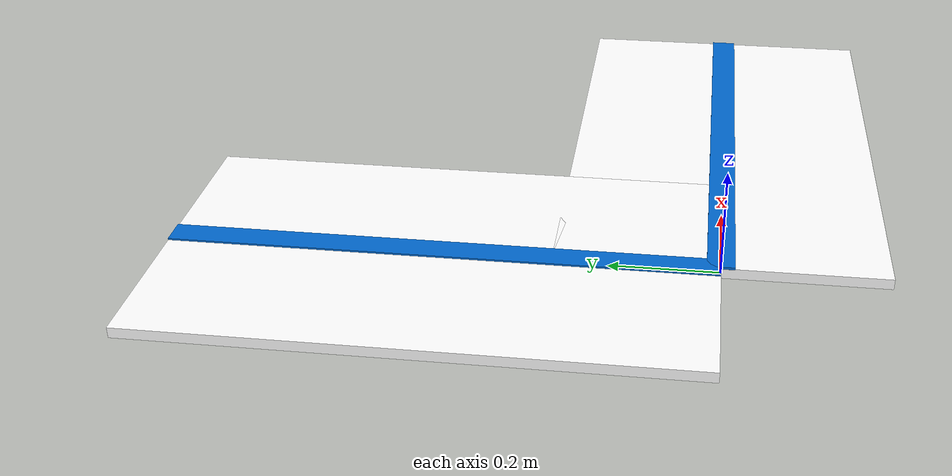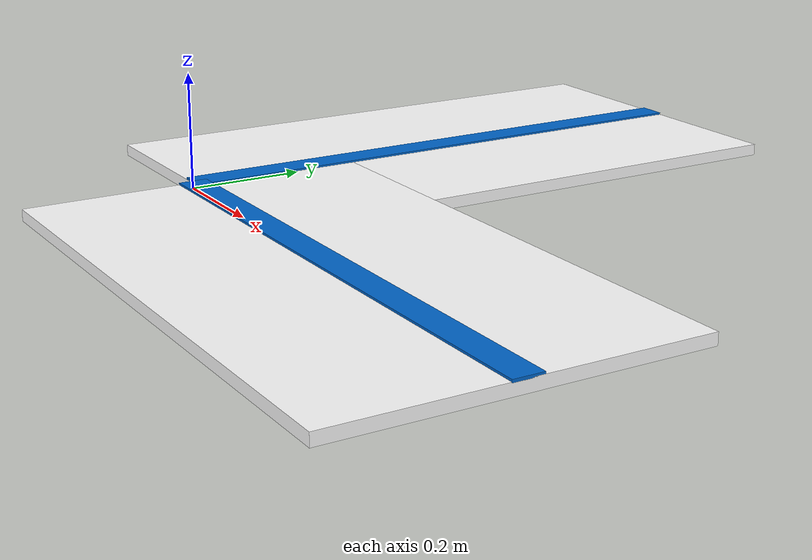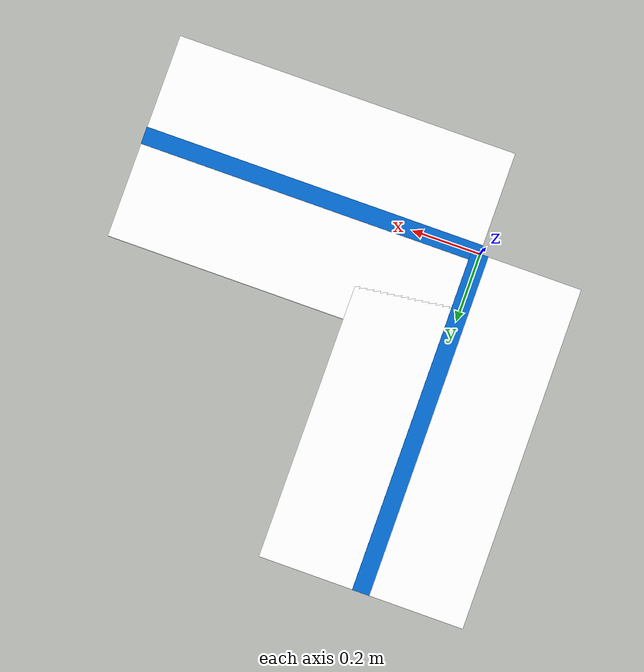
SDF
<?xml version="1.0" ?>
<sdf version="1.8">
  <model name="delivery_track_corner">
    <static>true</static>
    <link name="link">
      <!-- L-Shaped Floor (0.6m wide) - Clean Surface -->
      <visual name="floor_h">
        <pose>0.5 0 0 0 0 0</pose>
        <geometry><box><size>1.0 0.6 0.02</size></box></geometry>
        <material><ambient>1 1 1 1</ambient><diffuse>1 1 1 1</diffuse><specular>0.8 0.8 0.8 1</specular></material>
      </visual>
      <visual name="floor_v">
        <pose>0 0.5 0 0 0 0</pose>
        <geometry><box><size>0.6 1.0 0.02</size></box></geometry>
        <material><ambient>1 1 1 1</ambient><diffuse>1 1 1 1</diffuse><specular>0.8 0.8 0.8 1</specular></material>
      </visual>

      <!-- Center Blue Accent (Technical guide) -->
      <visual name="accent_h">
        <pose>0.5 0 0.011 0 0 0</pose>
        <geometry><box><size>1.0 0.05 0.005</size></box></geometry>
        <material><ambient>0 0.4 0.8 1</ambient><diffuse>0 0.4 0.8 1</diffuse><emissive>0 0.2 0.4 1</emissive></material>
      </visual>
      <visual name="accent_v">
        <pose>0 0.5 0.011 0 0 0</pose>
        <geometry><box><size>0.05 1.0 0.005</size></box></geometry>
        <material><ambient>0 0.4 0.8 1</ambient><diffuse>0 0.4 0.8 1</diffuse><emissive>0 0.2 0.4 1</emissive></material>
      </visual>

      <collision name="c1"><pose>0.5 0 0 0 0 0</pose><geometry><box><size>1.0 0.6 0.02</size></box></geometry></collision>
      <collision name="c2"><pose>0 0.5 0 0 0 0</pose><geometry><box><size>0.6 1.0 0.02</size></box></geometry></collision>
    </link>
  </model>
</sdf>
